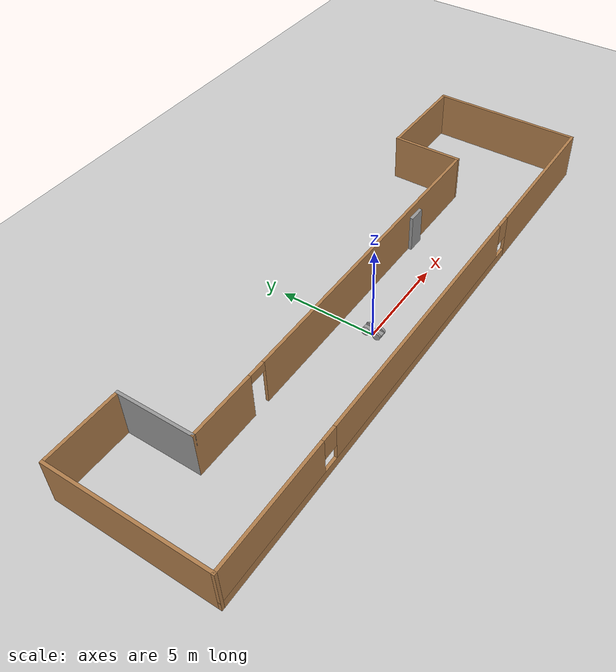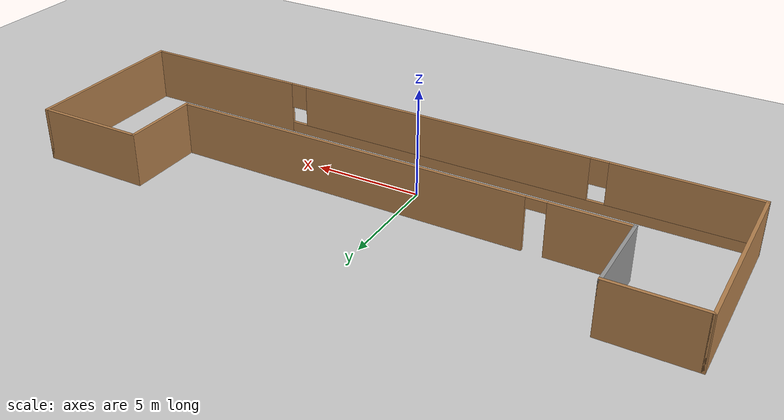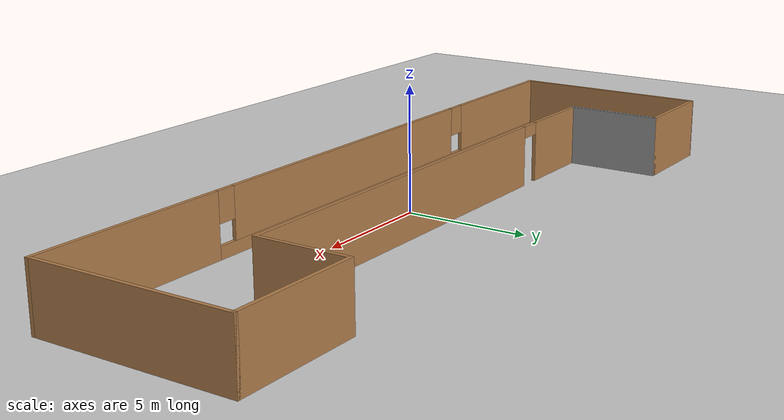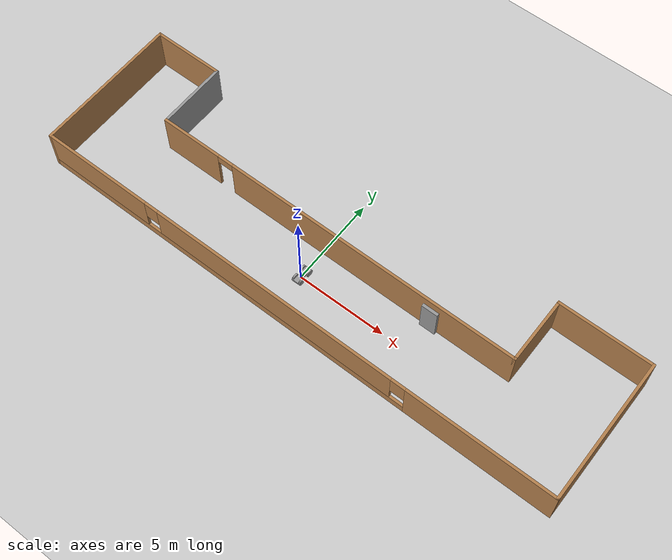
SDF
<sdf version="1.6">
 <world name="default">
  <model name="ground_plane">
   <static>1</static>
   <link name="link">
    <collision name="collision">
     <geometry><plane><normal>0 0 1</normal><size>100 100</size></plane></geometry>
     <surface>
      <contact><collide_bitmask>65535</collide_bitmask></contact>
      <friction><ode><mu>100</mu><mu2>50</mu2></ode></friction>
     </surface>
    </collision>
    <visual name="visual">
     <cast_shadows>0</cast_shadows>
     <geometry><plane><normal>0 0 1</normal><size>100 100</size></plane></geometry>
     <material>
      <script><uri>file://media/materials/scripts/gazebo.material</uri><name>Gazebo/Grey</name></script>
     </material>
    </visual>
   </link>
  </model>
  <model name="model1">
   <link name="link_0">
    <inertial>
     <mass>1</mass>
     <inertia>
      <ixx>0.166667</ixx>
      <ixy>0</ixy>
      <ixz>0</ixz>
      <iyy>0.166667</iyy>
      <iyz>0</iyz>
      <izz>0.166667</izz>
     </inertia>
    </inertial>
    <visual name="visual">
     <geometry><box><size>0.3 1 0.1</size></box></geometry>
     <material>
      <lighting>1</lighting>
      <script><uri>file://media/materials/scripts/gazebo.material</uri><name>Gazebo/Grey</name></script>
      <shader type="pixel"><normal_map>__default__</normal_map></shader>
      <ambient>0.3 0.3 0.3 1</ambient>
      <diffuse>0.7 0.7 0.7 1</diffuse>
      <specular>0.01 0.01 0.01 1</specular>
      <emissive>0 0 0 1</emissive>
     </material>
    </visual>
    <collision name="collision">
     <geometry><box><size>0.3 1 0.1</size></box></geometry>
     <surface>
      <friction>
       <ode><mu>1</mu><mu2>1</mu2><fdir1>0 0 0</fdir1><slip1>0</slip1><slip2>0</slip2></ode>
       <torsional>
        <coefficient>1</coefficient>
        <patch_radius>0</patch_radius>
        <surface_radius>0</surface_radius>
        <use_patch_radius>1</use_patch_radius>
        <ode><slip>0</slip></ode>
       </torsional>
      </friction>
      <bounce><restitution_coefficient>0</restitution_coefficient><threshold>1e+06</threshold></bounce>
      <contact>
       <collide_without_contact>0</collide_without_contact>
       <collide_without_contact_bitmask>1</collide_without_contact_bitmask>
       <collide_bitmask>1</collide_bitmask>
       <ode>
        <soft_cfm>0</soft_cfm>
        <soft_erp>0.2</soft_erp>
        <kp>1e+13</kp>
        <kd>1</kd>
        <max_vel>0.01</max_vel>
        <min_depth>0</min_depth>
       </ode>
       <bullet>
        <split_impulse>1</split_impulse>
        <split_impulse_penetration_threshold>-0.01</split_impulse_penetration_threshold>
        <soft_cfm>0</soft_cfm>
        <soft_erp>0.2</soft_erp>
        <kp>1e+13</kp>
        <kd>1</kd>
       </bullet>
      </contact>
     </surface>
    </collision>
   </link>
   <link name="link_1">
    <pose>0.200019 -0.3 0 0 1.5707 0</pose>
    <inertial>
     <mass>1</mass>
     <inertia><ixx>0.145833</ixx><ixy>0</ixy><ixz>0</ixz><iyy>0.145833</iyy><iyz>0</iyz><izz>0.125</izz></inertia>
    </inertial>
    <visual name="visual">
     <geometry><cylinder><radius>0.2</radius><length>0.1</length></cylinder></geometry>
     <material>
      <lighting>1</lighting>
      <script><uri>file://media/materials/scripts/gazebo.material</uri><name>Gazebo/Grey</name></script>
      <shader type="pixel"><normal_map>__default__</normal_map></shader>
      <ambient>0.3 0.3 0.3 1</ambient>
      <diffuse>0.7 0.7 0.7 1</diffuse>
      <specular>0.01 0.01 0.01 1</specular>
      <emissive>0 0 0 1</emissive>
     </material>
    </visual>
    <collision name="collision">
     <geometry><cylinder><radius>0.2</radius><length>0.1</length></cylinder></geometry>
     <surface>
      <friction>
       <ode><mu>1</mu><mu2>1</mu2><fdir1>0 0 0</fdir1><slip1>0</slip1><slip2>0</slip2></ode>
       <torsional>
        <coefficient>1</coefficient>
        <patch_radius>0</patch_radius>
        <surface_radius>0</surface_radius>
        <use_patch_radius>1</use_patch_radius>
        <ode><slip>0</slip></ode>
       </torsional>
      </friction>
      <bounce><restitution_coefficient>0</restitution_coefficient><threshold>1e+06</threshold></bounce>
      <contact>
       <collide_without_contact>0</collide_without_contact>
       <collide_without_contact_bitmask>1</collide_without_contact_bitmask>
       <collide_bitmask>1</collide_bitmask>
       <ode>
        <soft_cfm>0</soft_cfm>
        <soft_erp>0.2</soft_erp>
        <kp>1e+13</kp>
        <kd>1</kd>
        <max_vel>0.01</max_vel>
        <min_depth>0</min_depth>
       </ode>
       <bullet>
        <split_impulse>1</split_impulse>
        <split_impulse_penetration_threshold>-0.01</split_impulse_penetration_threshold>
        <soft_cfm>0</soft_cfm>
        <soft_erp>0.2</soft_erp>
        <kp>1e+13</kp>
        <kd>1</kd>
       </bullet>
      </contact>
     </surface>
    </collision>
   </link>
   <link name="link_1_clone">
    <pose>-0.200019 -0.3 0 0 1.5707 0</pose>
    <inertial>
     <mass>1</mass>
     <inertia><ixx>0.145833</ixx><ixy>0</ixy><ixz>0</ixz><iyy>0.145833</iyy><iyz>0</iyz><izz>0.125</izz></inertia>
    </inertial>
    <visual name="visual">
     <geometry><cylinder><radius>0.2</radius><length>0.1</length></cylinder></geometry>
     <material>
      <lighting>1</lighting>
      <script><uri>file://media/materials/scripts/gazebo.material</uri><name>Gazebo/Grey</name></script>
      <shader type="pixel"><normal_map>__default__</normal_map></shader>
      <ambient>0.3 0.3 0.3 1</ambient>
      <diffuse>0.7 0.7 0.7 1</diffuse>
      <specular>0.01 0.01 0.01 1</specular>
      <emissive>0 0 0 1</emissive>
     </material>
    </visual>
    <collision name="collision">
     <geometry><cylinder><radius>0.2</radius><length>0.1</length></cylinder></geometry>
     <surface>
      <friction>
       <ode><mu>1</mu><mu2>1</mu2><fdir1>0 0 0</fdir1><slip1>0</slip1><slip2>0</slip2></ode>
       <torsional>
        <coefficient>1</coefficient>
        <patch_radius>0</patch_radius>
        <surface_radius>0</surface_radius>
        <use_patch_radius>1</use_patch_radius>
        <ode><slip>0</slip></ode>
       </torsional>
      </friction>
      <bounce><restitution_coefficient>0</restitution_coefficient><threshold>1e+06</threshold></bounce>
      <contact>
       <collide_without_contact>0</collide_without_contact>
       <collide_without_contact_bitmask>1</collide_without_contact_bitmask>
       <collide_bitmask>1</collide_bitmask>
       <ode>
        <soft_cfm>0</soft_cfm>
        <soft_erp>0.2</soft_erp>
        <kp>1e+13</kp>
        <kd>1</kd>
        <max_vel>0.01</max_vel>
        <min_depth>0</min_depth>
       </ode>
       <bullet>
        <split_impulse>1</split_impulse>
        <split_impulse_penetration_threshold>-0.01</split_impulse_penetration_threshold>
        <soft_cfm>0</soft_cfm>
        <soft_erp>0.2</soft_erp>
        <kp>1e+13</kp>
        <kd>1</kd>
       </bullet>
      </contact>
     </surface>
    </collision>
   </link>
   <link name="link_1_clone_0">
    <pose>0.200019 0.3 0 0 1.5707 0</pose>
    <inertial>
     <mass>1</mass>
     <inertia><ixx>0.145833</ixx><ixy>0</ixy><ixz>0</ixz><iyy>0.145833</iyy><iyz>0</iyz><izz>0.125</izz></inertia>
    </inertial>
    <visual name="visual">
     <geometry><cylinder><radius>0.2</radius><length>0.1</length></cylinder></geometry>
     <material>
      <lighting>1</lighting>
      <script><uri>file://media/materials/scripts/gazebo.material</uri><name>Gazebo/Grey</name></script>
      <shader type="pixel"><normal_map>__default__</normal_map></shader>
      <ambient>0.3 0.3 0.3 1</ambient>
      <diffuse>0.7 0.7 0.7 1</diffuse>
      <specular>0.01 0.01 0.01 1</specular>
      <emissive>0 0 0 1</emissive>
     </material>
    </visual>
    <collision name="collision">
     <geometry><cylinder><radius>0.2</radius><length>0.1</length></cylinder></geometry>
     <surface>
      <friction>
       <ode><mu>1</mu><mu2>1</mu2><fdir1>0 0 0</fdir1><slip1>0</slip1><slip2>0</slip2></ode>
       <torsional>
        <coefficient>1</coefficient>
        <patch_radius>0</patch_radius>
        <surface_radius>0</surface_radius>
        <use_patch_radius>1</use_patch_radius>
        <ode><slip>0</slip></ode>
       </torsional>
      </friction>
      <bounce><restitution_coefficient>0</restitution_coefficient><threshold>1e+06</threshold></bounce>
      <contact>
       <collide_without_contact>0</collide_without_contact>
       <collide_without_contact_bitmask>1</collide_without_contact_bitmask>
       <collide_bitmask>1</collide_bitmask>
       <ode>
        <soft_cfm>0</soft_cfm>
        <soft_erp>0.2</soft_erp>
        <kp>1e+13</kp>
        <kd>1</kd>
        <max_vel>0.01</max_vel>
        <min_depth>0</min_depth>
       </ode>
       <bullet>
        <split_impulse>1</split_impulse>
        <split_impulse_penetration_threshold>-0.01</split_impulse_penetration_threshold>
        <soft_cfm>0</soft_cfm>
        <soft_erp>0.2</soft_erp>
        <kp>1e+13</kp>
        <kd>1</kd>
       </bullet>
      </contact>
     </surface>
    </collision>
   </link>
   <link name="link_1_clone_1">
    <pose>-0.200019 0.3 0 0 1.5707 0</pose>
    <inertial>
     <mass>1</mass>
     <inertia><ixx>0.145833</ixx><ixy>0</ixy><ixz>0</ixz><iyy>0.145833</iyy><iyz>0</iyz><izz>0.125</izz></inertia>
    </inertial>
    <visual name="visual">
     <geometry><cylinder><radius>0.2</radius><length>0.1</length></cylinder></geometry>
     <material>
      <lighting>1</lighting>
      <script><uri>file://media/materials/scripts/gazebo.material</uri><name>Gazebo/Grey</name></script>
      <shader type="pixel"><normal_map>__default__</normal_map></shader>
      <ambient>0.3 0.3 0.3 1</ambient>
      <diffuse>0.7 0.7 0.7 1</diffuse>
      <specular>0.01 0.01 0.01 1</specular>
      <emissive>0 0 0 1</emissive>
     </material>
    </visual>
    <collision name="collision">
     <geometry><cylinder><radius>0.2</radius><length>0.1</length></cylinder></geometry>
     <surface>
      <friction>
       <ode><mu>1</mu><mu2>1</mu2><fdir1>0 0 0</fdir1><slip1>0</slip1><slip2>0</slip2></ode>
       <torsional>
        <coefficient>1</coefficient>
        <patch_radius>0</patch_radius>
        <surface_radius>0</surface_radius>
        <use_patch_radius>1</use_patch_radius>
        <ode><slip>0</slip></ode>
       </torsional>
      </friction>
      <bounce><restitution_coefficient>0</restitution_coefficient><threshold>1e+06</threshold></bounce>
      <contact>
       <collide_without_contact>0</collide_without_contact>
       <collide_without_contact_bitmask>1</collide_without_contact_bitmask>
       <collide_bitmask>1</collide_bitmask>
       <ode>
        <soft_cfm>0</soft_cfm>
        <soft_erp>0.2</soft_erp>
        <kp>1e+13</kp>
        <kd>1</kd>
        <max_vel>0.01</max_vel>
        <min_depth>0</min_depth>
       </ode>
       <bullet>
        <split_impulse>1</split_impulse>
        <split_impulse_penetration_threshold>-0.01</split_impulse_penetration_threshold>
        <soft_cfm>0</soft_cfm>
        <soft_erp>0.2</soft_erp>
        <kp>1e+13</kp>
        <kd>1</kd>
       </bullet>
      </contact>
     </surface>
    </collision>
   </link>
   <joint name="link_0_JOINT_0" type="revolute">
    <parent>link_0</parent>
    <child>link_1</child>
    <axis>
     <xyz>0 0 1</xyz>
     <use_parent_model_frame>0</use_parent_model_frame>
     <limit>
      <lower>-1.79769e+308</lower>
      <upper>1.79769e+308</upper>
      <effort>-1</effort>
      <velocity>-1</velocity>
     </limit>
     <dynamics>
      <spring_reference>0</spring_reference>
      <spring_stiffness>0</spring_stiffness>
      <damping>0</damping>
     </dynamics>
    </axis>
    <physics>
     <ode><limit><cfm>0</cfm><erp>0.2</erp></limit><suspension><cfm>0</cfm><erp>0.2</erp></suspension></ode>
    </physics>
   </joint>
   <joint name="link_0_JOINT_1" type="revolute">
    <parent>link_0</parent>
    <child>link_1_clone</child>
    <axis>
     <xyz>0 0 1</xyz>
     <use_parent_model_frame>0</use_parent_model_frame>
     <limit>
      <lower>-1.79769e+308</lower>
      <upper>1.79769e+308</upper>
      <effort>-1</effort>
      <velocity>-1</velocity>
     </limit>
     <dynamics>
      <spring_reference>0</spring_reference>
      <spring_stiffness>0</spring_stiffness>
      <damping>0</damping>
     </dynamics>
    </axis>
    <physics>
     <ode><limit><cfm>0</cfm><erp>0.2</erp></limit><suspension><cfm>0</cfm><erp>0.2</erp></suspension></ode>
    </physics>
   </joint>
   <joint name="link_0_JOINT_2" type="revolute">
    <parent>link_0</parent>
    <child>link_1_clone_0</child>
    <axis>
     <xyz>0 0 1</xyz>
     <use_parent_model_frame>0</use_parent_model_frame>
     <limit>
      <lower>-1.79769e+308</lower>
      <upper>1.79769e+308</upper>
      <effort>-1</effort>
      <velocity>-1</velocity>
     </limit>
     <dynamics>
      <spring_reference>0</spring_reference>
      <spring_stiffness>0</spring_stiffness>
      <damping>0</damping>
     </dynamics>
    </axis>
    <physics>
     <ode><limit><cfm>0</cfm><erp>0.2</erp></limit><suspension><cfm>0</cfm><erp>0.2</erp></suspension></ode>
    </physics>
   </joint>
   <joint name="link_0_JOINT_3" type="revolute">
    <parent>link_0</parent>
    <child>link_1_clone_1</child>
    <axis>
     <xyz>0 0 1</xyz>
     <use_parent_model_frame>0</use_parent_model_frame>
     <limit>
      <lower>-1.79769e+308</lower>
      <upper>1.79769e+308</upper>
      <effort>-1</effort>
      <velocity>-1</velocity>
     </limit>
     <dynamics>
      <spring_reference>0</spring_reference>
      <spring_stiffness>0</spring_stiffness>
      <damping>0</damping>
     </dynamics>
    </axis>
    <physics>
     <ode><limit><cfm>0</cfm><erp>0.2</erp></limit><suspension><cfm>0</cfm><erp>0.2</erp></suspension></ode>
    </physics>
   </joint>
   <static>0</static>
   <pose>0.057716 0.026564 0.200005 -1e-06 -1e-06 0.00411</pose>
  </model>
  <model name="building1">
   <pose>1.12546 1.55416 0 0 -0 0</pose>
   <link name="Door_1">
    <collision name="Door_1_Collision">
     <geometry><box><size>0.9 0.17 2</size></box></geometry>
     <pose>0 0 1 0 -0 0</pose>
    </collision>
    <visual name="Door_1_Visual">
     <pose>0 0 1 0 -0 0</pose>
     <geometry><box><size>0.9 0.17 2</size></box></geometry>
     <material>
      <script><uri>file://media/materials/scripts/gazebo.material</uri><name>Gazebo/Grey</name></script>
     </material>
    </visual>
    <pose>5.38445 0.037312 0 0 -0 0</pose>
   </link>
   <link name="Wall_1">
    <collision name="Wall_1_Collision">
     <geometry><box><size>4 0.15 2.5</size></box></geometry>
     <pose>0 0 1.25 0 -0 0</pose>
    </collision>
    <visual name="Wall_1_Visual">
     <pose>0 0 1.25 0 -0 0</pose>
     <geometry><box><size>4 0.15 2.5</size></box></geometry>
     <material>
      <script><uri>file://media/materials/scripts/gazebo.material</uri><name>Gazebo/Wood</name></script>
      <ambient>1 1 1 1</ambient>
     </material>
     <meta><layer>0</layer></meta>
    </visual>
    <pose>-13.075 4.05 0 0 -0 0</pose>
   </link>
   <link name="Wall_2">
    <collision name="Wall_2_Collision">
     <geometry><box><size>4 0.15 2.5</size></box></geometry>
     <pose>0 0 1.25 0 -0 0</pose>
    </collision>
    <visual name="Wall_2_Visual">
     <pose>0 0 1.25 0 -0 0</pose>
     <geometry><box><size>4 0.15 2.5</size></box></geometry>
     <material>
      <script><uri>file://media/materials/scripts/gazebo.material</uri><name>Gazebo/Grey</name></script>
      <ambient>1 1 1 1</ambient>
     </material>
     <meta><layer>0</layer></meta>
    </visual>
    <pose>-11.15 2.125 0 0 0 -1.5708</pose>
   </link>
   <link name="Wall_3">
    <pose>-0.6 0.2 0 0 -0 0</pose>
    <visual name="Wall_3_Visual_0">
     <pose>-8.85857 0 1.25 0 -0 0</pose>
     <geometry><box><size>3.53286 0.15 2.5</size></box></geometry>
     <material>
      <script><uri>file://media/materials/scripts/gazebo.material</uri><name>Gazebo/Wood</name></script>
      <ambient>1 1 1 1</ambient>
     </material>
     <meta><layer>0</layer></meta>
    </visual>
    <collision name="Wall_3_Collision_0">
     <geometry><box><size>3.53286 0.15 2.5</size></box></geometry>
     <pose>-8.85857 0 1.25 0 -0 0</pose>
    </collision>
    <visual name="Wall_3_Visual_1">
     <pose>2.21643 0 1.25 0 -0 0</pose>
     <geometry><box><size>16.8171 0.15 2.5</size></box></geometry>
     <material>
      <script><uri>file://media/materials/scripts/gazebo.material</uri><name>Gazebo/Wood</name></script>
      <ambient>1 1 1 1</ambient>
     </material>
     <meta><layer>0</layer></meta>
    </visual>
    <collision name="Wall_3_Collision_1">
     <geometry><box><size>16.8171 0.15 2.5</size></box></geometry>
     <pose>2.21643 0 1.25 0 -0 0</pose>
    </collision>
    <visual name="Wall_3_Visual_2">
     <pose>-6.64214 0 2.25 0 -0 0</pose>
     <geometry><box><size>0.9 0.15 0.5</size></box></geometry>
     <material>
      <script><uri>file://media/materials/scripts/gazebo.material</uri><name>Gazebo/Wood</name></script>
      <ambient>1 1 1 1</ambient>
     </material>
     <meta><layer>0</layer></meta>
    </visual>
    <collision name="Wall_3_Collision_2">
     <geometry><box><size>0.9 0.15 0.5</size></box></geometry>
     <pose>-6.64214 0 2.25 0 -0 0</pose>
    </collision>
   </link>
   <link name="Wall_4">
    <collision name="Wall_4_Collision">
     <geometry><box><size>3.75 0.15 2.5</size></box></geometry>
     <pose>0 0 1.25 0 -0 0</pose>
    </collision>
    <visual name="Wall_4_Visual">
     <pose>0 0 1.25 0 -0 0</pose>
     <geometry><box><size>3.75 0.15 2.5</size></box></geometry>
     <material>
      <script><uri>file://media/materials/scripts/gazebo.material</uri><name>Gazebo/Wood</name></script>
      <ambient>1 1 1 1</ambient>
     </material>
     <meta><layer>0</layer></meta>
    </visual>
    <pose>9.95 2 0 0 -0 1.5708</pose>
   </link>
   <link name="Wall_5">
    <collision name="Wall_5_Collision">
     <geometry><box><size>5.25 0.15 2.5</size></box></geometry>
     <pose>0 0 1.25 0 -0 0</pose>
    </collision>
    <visual name="Wall_5_Visual">
     <pose>0 0 1.25 0 -0 0</pose>
     <geometry><box><size>5.25 0.15 2.5</size></box></geometry>
     <material>
      <script><uri>file://media/materials/scripts/gazebo.material</uri><name>Gazebo/Wood</name></script>
      <ambient>1 1 1 1</ambient>
     </material>
     <meta><layer>0</layer></meta>
    </visual>
    <pose>12.5 3.8 0 0 -0 0</pose>
   </link>
   <link name="Wall_6">
    <collision name="Wall_6_Collision">
     <geometry><box><size>8 0.15 2.5</size></box></geometry>
     <pose>0 0 1.25 0 -0 0</pose>
    </collision>
    <visual name="Wall_6_Visual">
     <pose>0 0 1.25 0 -0 0</pose>
     <geometry><box><size>8 0.15 2.5</size></box></geometry>
     <material>
      <script><uri>file://media/materials/scripts/gazebo.material</uri><name>Gazebo/Wood</name></script>
      <ambient>1 1 1 1</ambient>
     </material>
     <meta><layer>0</layer></meta>
    </visual>
    <pose>15.05 -0.125 0 0 0 -1.5708</pose>
   </link>
   <link name="Wall_7">
    <pose>0 -4.05 0 0 -0 3.14159</pose>
    <visual name="Wall_7_Visual_0">
     <pose>-11.0433 0 1.25 0 -0 0</pose>
     <geometry><box><size>8.16349 0.15 2.5</size></box></geometry>
     <material>
      <script><uri>file://media/materials/scripts/gazebo.material</uri><name>Gazebo/Wood</name></script>
      <ambient>1 1 1 1</ambient>
     </material>
     <meta><layer>0</layer></meta>
    </visual>
    <collision name="Wall_7_Collision_0">
     <geometry><box><size>8.16349 0.15 2.5</size></box></geometry>
     <pose>-11.0433 0 1.25 0 -0 0</pose>
    </collision>
    <visual name="Wall_7_Visual_1">
     <pose>4.08175 0 0.25 0 -0 0</pose>
     <geometry><box><size>22.0865 0.15 0.5</size></box></geometry>
     <material>
      <script><uri>file://media/materials/scripts/gazebo.material</uri><name>Gazebo/Wood</name></script>
      <ambient>1 1 1 1</ambient>
     </material>
     <meta><layer>0</layer></meta>
    </visual>
    <collision name="Wall_7_Collision_1">
     <geometry><box><size>22.0865 0.15 0.5</size></box></geometry>
     <pose>4.08175 0 0.25 0 -0 0</pose>
    </collision>
    <visual name="Wall_7_Visual_2">
     <pose>0.87534 0 1.5 0 -0 0</pose>
     <geometry><box><size>14.0737 0.15 2</size></box></geometry>
     <material>
      <script><uri>file://media/materials/scripts/gazebo.material</uri><name>Gazebo/Wood</name></script>
      <ambient>1 1 1 1</ambient>
     </material>
     <meta><layer>0</layer></meta>
    </visual>
    <collision name="Wall_7_Collision_2">
     <geometry><box><size>14.0737 0.15 2</size></box></geometry>
     <pose>0.87534 0 1.5 0 -0 0</pose>
    </collision>
    <visual name="Wall_7_Visual_3">
     <pose>11.9186 0 1.5 0 -0 0</pose>
     <geometry><box><size>6.41281 0.15 2</size></box></geometry>
     <material>
      <script><uri>file://media/materials/scripts/gazebo.material</uri><name>Gazebo/Wood</name></script>
      <ambient>1 1 1 1</ambient>
     </material>
     <meta><layer>0</layer></meta>
    </visual>
    <collision name="Wall_7_Collision_3">
     <geometry><box><size>6.41281 0.15 2</size></box></geometry>
     <pose>11.9186 0 1.5 0 -0 0</pose>
    </collision>
    <visual name="Wall_7_Visual_4">
     <pose>-6.56151 0 1.9 0 -0 0</pose>
     <geometry><box><size>0.8 0.15 1.2</size></box></geometry>
     <material>
      <script><uri>file://media/materials/scripts/gazebo.material</uri><name>Gazebo/Wood</name></script>
      <ambient>1 1 1 1</ambient>
     </material>
     <meta><layer>0</layer></meta>
    </visual>
    <collision name="Wall_7_Collision_4">
     <geometry><box><size>0.8 0.15 1.2</size></box></geometry>
     <pose>-6.56151 0 1.9 0 -0 0</pose>
    </collision>
    <visual name="Wall_7_Visual_5">
     <pose>8.31219 0 1.9 0 -0 0</pose>
     <geometry><box><size>0.8 0.15 1.2</size></box></geometry>
     <material>
      <script><uri>file://media/materials/scripts/gazebo.material</uri><name>Gazebo/Wood</name></script>
      <ambient>1 1 1 1</ambient>
     </material>
     <meta><layer>0</layer></meta>
    </visual>
    <collision name="Wall_7_Collision_5">
     <geometry><box><size>0.8 0.15 1.2</size></box></geometry>
     <pose>8.31219 0 1.9 0 -0 0</pose>
    </collision>
   </link>
   <link name="Wall_8">
    <collision name="Wall_8_Collision">
     <geometry><box><size>8.25 0.15 2.5</size></box></geometry>
     <pose>0 0 1.25 0 -0 0</pose>
    </collision>
    <visual name="Wall_8_Visual">
     <pose>0 0 1.25 0 -0 0</pose>
     <geometry><box><size>8.25 0.15 2.5</size></box></geometry>
     <material>
      <script><uri>file://media/materials/scripts/gazebo.material</uri><name>Gazebo/Wood</name></script>
      <ambient>1 1 1 1</ambient>
     </material>
     <meta><layer>0</layer></meta>
    </visual>
    <pose>-15.05 0 0 0 -0 1.5708</pose>
   </link>
   <static>1</static>
  </model>
 </world>
</sdf>
